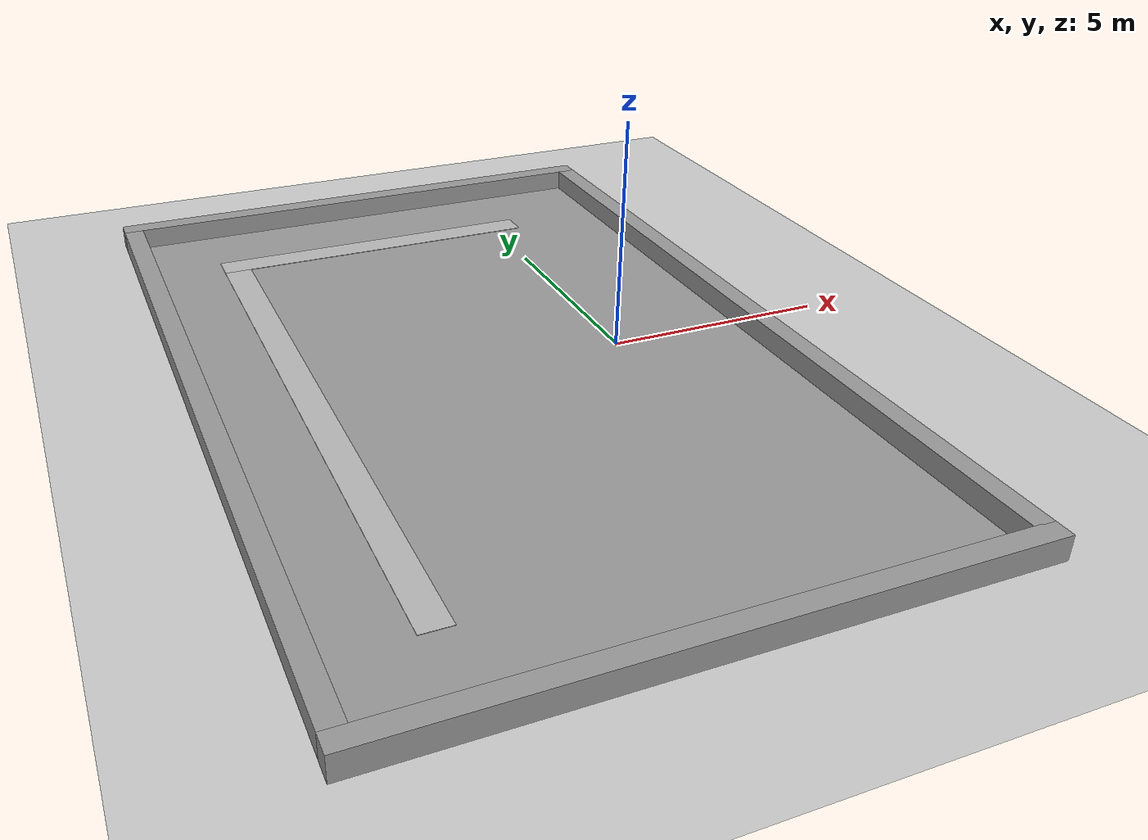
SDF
<sdf version="1.7">
 <world name="default">
  <light name="sun" type="directional">
   <pose>0 0 10 0 -0 0</pose>
   <diffuse>0.8 0.8 0.8 1</diffuse>
   <specular>0.2 0.2 0.2 1</specular>
   <attenuation>
    <range>1000</range>
    <constant>0.9</constant>
    <linear>0.01</linear>
    <quadratic>0.001</quadratic>
   </attenuation>
   <direction>-0.5 0.1 -0.9</direction>
   <spot><inner_angle>0</inner_angle><outer_angle>0</outer_angle><falloff>0</falloff></spot>
  </light>
  <model name="ground_plane">
   <static>1</static>
   <link name="link">
    <collision name="collision">
     <geometry><plane><normal>0 0 1</normal><size>100 100</size></plane></geometry>
     <surface>
      <contact><collide_bitmask>65535</collide_bitmask></contact>
      <friction><ode><mu>100</mu><mu2>50</mu2></ode></friction>
     </surface>
    </collision>
    <visual name="visual">
     <cast_shadows>0</cast_shadows>
     <geometry><plane><normal>0 0 1</normal><size>100 100</size></plane></geometry>
     <material>
      <script><uri>file://media/materials/scripts/gazebo.material</uri><name>Gazebo/Grey</name></script>
     </material>
    </visual>
   </link>
  </model>
  <gravity>0 0 -9.8</gravity>
  <magnetic_field>6e-06 2.3e-05 -4.2e-05</magnetic_field>
  <atmosphere type="adiabatic"/>
  <physics type="ode">
   <max_step_size>0.001</max_step_size>
   <real_time_factor>1</real_time_factor>
   <real_time_update_rate>1000</real_time_update_rate>
  </physics>
  <scene><ambient>0.4 0.4 0.4 1</ambient><background>0.7 0.7 0.7 1</background><shadows>1</shadows></scene>
  <spherical_coordinates>
   <surface_model>EARTH_WGS84</surface_model>
   <latitude_deg>0</latitude_deg>
   <longitude_deg>0</longitude_deg>
   <elevation>0</elevation>
   <heading_deg>0</heading_deg>
  </spherical_coordinates>
  <model name="unit_box_wall">
   <link name="unit_box::link">
    <inertial>
     <mass>1</mass>
     <inertia>
      <ixx>0.166667</ixx>
      <ixy>0</ixy>
      <ixz>0</ixz>
      <iyy>0.166667</iyy>
      <iyz>0</iyz>
      <izz>0.166667</izz>
     </inertia>
    </inertial>
    <visual name="visual">
     <geometry><box><size>0.446113 18.5982 1</size></box></geometry>
     <material>
      <script><name>Gazebo/Grey</name><uri>file://media/materials/scripts/gazebo.material</uri></script>
      <shader type="pixel"/>
     </material>
    </visual>
    <collision name="collision">
     <geometry><box><size>0.446113 18.5982 1</size></box></geometry>
     <surface>
      <friction>
       <ode><mu>1</mu><mu2>1</mu2><fdir1>0 0 0</fdir1><slip1>0</slip1><slip2>0</slip2></ode>
       <torsional>
        <coefficient>1</coefficient>
        <patch_radius>0</patch_radius>
        <surface_radius>0</surface_radius>
        <use_patch_radius>1</use_patch_radius>
        <ode><slip>0</slip></ode>
       </torsional>
      </friction>
      <bounce><restitution_coefficient>0</restitution_coefficient><threshold>1e+06</threshold></bounce>
      <contact>
       <collide_without_contact>0</collide_without_contact>
       <collide_without_contact_bitmask>1</collide_without_contact_bitmask>
       <collide_bitmask>1</collide_bitmask>
       <ode>
        <soft_cfm>0</soft_cfm>
        <soft_erp>0.2</soft_erp>
        <kp>1e+13</kp>
        <kd>1</kd>
        <max_vel>0.01</max_vel>
        <min_depth>0</min_depth>
       </ode>
       <bullet>
        <split_impulse>1</split_impulse>
        <split_impulse_penetration_threshold>-0.01</split_impulse_penetration_threshold>
        <soft_cfm>0</soft_cfm>
        <soft_erp>0.2</soft_erp>
        <kp>1e+13</kp>
        <kd>1</kd>
       </bullet>
      </contact>
     </surface>
    </collision>
   </link>
   <static>1</static>
   <allow_auto_disable>0</allow_auto_disable>
   <pose>-9.02597 0.034785 0 0 -0 0</pose>
  </model>
  <model name="unit_box_wall_clone">
   <link name="unit_box::link">
    <inertial>
     <mass>1</mass>
     <inertia>
      <ixx>0.166667</ixx>
      <ixy>0</ixy>
      <ixz>0</ixz>
      <iyy>0.166667</iyy>
      <iyz>0</iyz>
      <izz>0.166667</izz>
     </inertia>
    </inertial>
    <visual name="visual">
     <geometry><box><size>0.446113 18.5982 1</size></box></geometry>
     <material>
      <script><name>Gazebo/Grey</name><uri>file://media/materials/scripts/gazebo.material</uri></script>
      <shader type="pixel"/>
     </material>
    </visual>
    <collision name="collision">
     <geometry><box><size>0.446113 18.5982 1</size></box></geometry>
     <surface>
      <friction>
       <ode><mu>1</mu><mu2>1</mu2><fdir1>0 0 0</fdir1><slip1>0</slip1><slip2>0</slip2></ode>
       <torsional>
        <coefficient>1</coefficient>
        <patch_radius>0</patch_radius>
        <surface_radius>0</surface_radius>
        <use_patch_radius>1</use_patch_radius>
        <ode><slip>0</slip></ode>
       </torsional>
      </friction>
      <bounce><restitution_coefficient>0</restitution_coefficient><threshold>1e+06</threshold></bounce>
      <contact>
       <collide_without_contact>0</collide_without_contact>
       <collide_without_contact_bitmask>1</collide_without_contact_bitmask>
       <collide_bitmask>1</collide_bitmask>
       <ode>
        <soft_cfm>0</soft_cfm>
        <soft_erp>0.2</soft_erp>
        <kp>1e+13</kp>
        <kd>1</kd>
        <max_vel>0.01</max_vel>
        <min_depth>0</min_depth>
       </ode>
       <bullet>
        <split_impulse>1</split_impulse>
        <split_impulse_penetration_threshold>-0.01</split_impulse_penetration_threshold>
        <soft_cfm>0</soft_cfm>
        <soft_erp>0.2</soft_erp>
        <kp>1e+13</kp>
        <kd>1</kd>
       </bullet>
      </contact>
     </surface>
    </collision>
   </link>
   <static>1</static>
   <allow_auto_disable>0</allow_auto_disable>
   <pose>3.13218 0.00569 0 0 -0 0</pose>
  </model>
  <model name="unit_box_wall_clone_0">
   <link name="unit_box::link">
    <inertial>
     <mass>1</mass>
     <inertia>
      <ixx>0.166667</ixx>
      <ixy>0</ixy>
      <ixz>0</ixz>
      <iyy>0.166667</iyy>
      <iyz>0</iyz>
      <izz>0.166667</izz>
     </inertia>
    </inertial>
    <visual name="visual">
     <geometry><box><size>0.446113 12.605 1</size></box></geometry>
     <material>
      <script><name>Gazebo/Grey</name><uri>file://media/materials/scripts/gazebo.material</uri></script>
      <shader type="pixel"/>
     </material>
    </visual>
    <collision name="collision">
     <geometry><box><size>0.446113 12.605 1</size></box></geometry>
     <surface>
      <friction>
       <ode><mu>1</mu><mu2>1</mu2><fdir1>0 0 0</fdir1><slip1>0</slip1><slip2>0</slip2></ode>
       <torsional>
        <coefficient>1</coefficient>
        <patch_radius>0</patch_radius>
        <surface_radius>0</surface_radius>
        <use_patch_radius>1</use_patch_radius>
        <ode><slip>0</slip></ode>
       </torsional>
      </friction>
      <bounce><restitution_coefficient>0</restitution_coefficient><threshold>1e+06</threshold></bounce>
      <contact>
       <collide_without_contact>0</collide_without_contact>
       <collide_without_contact_bitmask>1</collide_without_contact_bitmask>
       <collide_bitmask>1</collide_bitmask>
       <ode>
        <soft_cfm>0</soft_cfm>
        <soft_erp>0.2</soft_erp>
        <kp>1e+13</kp>
        <kd>1</kd>
        <max_vel>0.01</max_vel>
        <min_depth>0</min_depth>
       </ode>
       <bullet>
        <split_impulse>1</split_impulse>
        <split_impulse_penetration_threshold>-0.01</split_impulse_penetration_threshold>
        <soft_cfm>0</soft_cfm>
        <soft_erp>0.2</soft_erp>
        <kp>1e+13</kp>
        <kd>1</kd>
       </bullet>
      </contact>
     </surface>
    </collision>
   </link>
   <static>1</static>
   <allow_auto_disable>0</allow_auto_disable>
   <pose>-2.94746 -9.48662 0 0 0 -1.57124</pose>
  </model>
  <model name="unit_box_wall_clone_0_clone">
   <link name="unit_box::link">
    <inertial>
     <mass>1</mass>
     <inertia>
      <ixx>0.166667</ixx>
      <ixy>0</ixy>
      <ixz>0</ixz>
      <iyy>0.166667</iyy>
      <iyz>0</iyz>
      <izz>0.166667</izz>
     </inertia>
    </inertial>
    <visual name="visual">
     <geometry><box><size>0.446113 12.605 1</size></box></geometry>
     <material>
      <script><name>Gazebo/Grey</name><uri>file://media/materials/scripts/gazebo.material</uri></script>
      <shader type="pixel"/>
     </material>
    </visual>
    <collision name="collision">
     <geometry><box><size>0.446113 12.605 1</size></box></geometry>
     <surface>
      <friction>
       <ode><mu>1</mu><mu2>1</mu2><fdir1>0 0 0</fdir1><slip1>0</slip1><slip2>0</slip2></ode>
       <torsional>
        <coefficient>1</coefficient>
        <patch_radius>0</patch_radius>
        <surface_radius>0</surface_radius>
        <use_patch_radius>1</use_patch_radius>
        <ode><slip>0</slip></ode>
       </torsional>
      </friction>
      <bounce><restitution_coefficient>0</restitution_coefficient><threshold>1e+06</threshold></bounce>
      <contact>
       <collide_without_contact>0</collide_without_contact>
       <collide_without_contact_bitmask>1</collide_without_contact_bitmask>
       <collide_bitmask>1</collide_bitmask>
       <ode>
        <soft_cfm>0</soft_cfm>
        <soft_erp>0.2</soft_erp>
        <kp>1e+13</kp>
        <kd>1</kd>
        <max_vel>0.01</max_vel>
        <min_depth>0</min_depth>
       </ode>
       <bullet>
        <split_impulse>1</split_impulse>
        <split_impulse_penetration_threshold>-0.01</split_impulse_penetration_threshold>
        <soft_cfm>0</soft_cfm>
        <soft_erp>0.2</soft_erp>
        <kp>1e+13</kp>
        <kd>1</kd>
       </bullet>
      </contact>
     </surface>
    </collision>
   </link>
   <static>1</static>
   <allow_auto_disable>0</allow_auto_disable>
   <pose>-2.94746 9.5173 0 0 0 -1.57124</pose>
  </model>
  <model name="unit_box_wall_0">
   <link name="unit_box::link">
    <inertial>
     <mass>1</mass>
     <inertia>
      <ixx>0.166667</ixx>
      <ixy>0</ixy>
      <ixz>0</ixz>
      <iyy>0.166667</iyy>
      <iyz>0</iyz>
      <izz>0.166667</izz>
     </inertia>
    </inertial>
    <visual name="visual">
     <geometry><box><size>11.9617 18.9194 0.225866</size></box></geometry>
     <material>
      <script><name>Gazebo/Grey</name><uri>file://media/materials/scripts/gazebo.material</uri></script>
      <shader type="pixel"/>
     </material>
    </visual>
    <collision name="collision">
     <geometry><box><size>11.9617 18.9194 0.225866</size></box></geometry>
     <surface>
      <friction>
       <ode><mu>1</mu><mu2>1</mu2><fdir1>0 0 0</fdir1><slip1>0</slip1><slip2>0</slip2></ode>
       <torsional>
        <coefficient>1</coefficient>
        <patch_radius>0</patch_radius>
        <surface_radius>0</surface_radius>
        <use_patch_radius>1</use_patch_radius>
        <ode><slip>0</slip></ode>
       </torsional>
      </friction>
      <bounce><restitution_coefficient>0</restitution_coefficient><threshold>1e+06</threshold></bounce>
      <contact>
       <collide_without_contact>0</collide_without_contact>
       <collide_without_contact_bitmask>1</collide_without_contact_bitmask>
       <collide_bitmask>1</collide_bitmask>
       <ode>
        <soft_cfm>0</soft_cfm>
        <soft_erp>0.2</soft_erp>
        <kp>1e+13</kp>
        <kd>1</kd>
        <max_vel>0.01</max_vel>
        <min_depth>0</min_depth>
       </ode>
       <bullet>
        <split_impulse>1</split_impulse>
        <split_impulse_penetration_threshold>-0.01</split_impulse_penetration_threshold>
        <soft_cfm>0</soft_cfm>
        <soft_erp>0.2</soft_erp>
        <kp>1e+13</kp>
        <kd>1</kd>
       </bullet>
      </contact>
     </surface>
    </collision>
   </link>
   <static>1</static>
   <allow_auto_disable>0</allow_auto_disable>
   <pose>-2.99807 0.153787 -0.095815 0 -0 0</pose>
  </model>
  <model name="wallx">
   <link name="unit_box::link">
    <inertial>
     <mass>0.360824</mass>
     <inertia>
      <ixx>1.11244</ixx>
      <ixy>0</ixy>
      <ixz>0</ixz>
      <iyy>0.0643516</iyy>
      <iyz>0</iyz>
      <izz>1.11666</izz>
     </inertia>
    </inertial>
    <visual name="visual">
     <geometry><box><size>0.63604 14.9462 1</size></box></geometry>
     <material>
      <script>
       <uri>model://wallx/materials/scripts</uri>
       <uri>model://wallx/materials/textures/</uri>
       <name>sofaMat/Diffuse</name>
      </script>
      <shader type="pixel"/>
     </material>
    </visual>
    <collision name="collision">
     <geometry><box><size>0.63604 14.9462 1</size></box></geometry>
     <surface>
      <friction>
       <ode><mu>1</mu><mu2>1</mu2><fdir1>0 0 0</fdir1><slip1>0</slip1><slip2>0</slip2></ode>
       <torsional>
        <coefficient>1</coefficient>
        <patch_radius>0</patch_radius>
        <surface_radius>0</surface_radius>
        <use_patch_radius>1</use_patch_radius>
        <ode><slip>0</slip></ode>
       </torsional>
      </friction>
      <bounce><restitution_coefficient>0</restitution_coefficient><threshold>1e+06</threshold></bounce>
      <contact>
       <collide_without_contact>0</collide_without_contact>
       <collide_without_contact_bitmask>1</collide_without_contact_bitmask>
       <collide_bitmask>1</collide_bitmask>
       <ode>
        <soft_cfm>0</soft_cfm>
        <soft_erp>0.2</soft_erp>
        <kp>1e+13</kp>
        <kd>1</kd>
        <max_vel>0.01</max_vel>
        <min_depth>0</min_depth>
       </ode>
       <bullet>
        <split_impulse>1</split_impulse>
        <split_impulse_penetration_threshold>-0.01</split_impulse_penetration_threshold>
        <soft_cfm>0</soft_cfm>
        <soft_erp>0.2</soft_erp>
        <kp>1e+13</kp>
        <kd>1</kd>
       </bullet>
      </contact>
     </surface>
    </collision>
   </link>
   <static>1</static>
   <allow_auto_disable>0</allow_auto_disable>
   <pose>-6.89945 0.027812 -0.470978 0 -0 0</pose>
  </model>
  <model name="wallx_clone">
   <link name="unit_box::link">
    <inertial>
     <mass>0.360824</mass>
     <inertia>
      <ixx>1.11244</ixx>
      <ixy>0</ixy>
      <ixz>0</ixz>
      <iyy>0.0643516</iyy>
      <iyz>0</iyz>
      <izz>1.11666</izz>
     </inertia>
    </inertial>
    <visual name="visual">
     <geometry><box><size>0.636041 7.85363 1</size></box></geometry>
     <material>
      <script>
       <uri>model://wallx/materials/scripts</uri>
       <uri>model://wallx/materials/textures/</uri>
       <name>sofaMat/Diffuse</name>
      </script>
      <shader type="pixel"/>
     </material>
    </visual>
    <collision name="collision">
     <geometry><box><size>0.636041 7.85363 1</size></box></geometry>
     <surface>
      <friction>
       <ode><mu>1</mu><mu2>1</mu2><fdir1>0 0 0</fdir1><slip1>0</slip1><slip2>0</slip2></ode>
       <torsional>
        <coefficient>1</coefficient>
        <patch_radius>0</patch_radius>
        <surface_radius>0</surface_radius>
        <use_patch_radius>1</use_patch_radius>
        <ode><slip>0</slip></ode>
       </torsional>
      </friction>
      <bounce><restitution_coefficient>0</restitution_coefficient><threshold>1e+06</threshold></bounce>
      <contact>
       <collide_without_contact>0</collide_without_contact>
       <collide_without_contact_bitmask>1</collide_without_contact_bitmask>
       <collide_bitmask>1</collide_bitmask>
       <ode>
        <soft_cfm>0</soft_cfm>
        <soft_erp>0.2</soft_erp>
        <kp>1e+13</kp>
        <kd>1</kd>
        <max_vel>0.01</max_vel>
        <min_depth>0</min_depth>
       </ode>
       <bullet>
        <split_impulse>1</split_impulse>
        <split_impulse_penetration_threshold>-0.01</split_impulse_penetration_threshold>
        <soft_cfm>0</soft_cfm>
        <soft_erp>0.2</soft_erp>
        <kp>1e+13</kp>
        <kd>1</kd>
       </bullet>
      </contact>
     </surface>
    </collision>
   </link>
   <static>1</static>
   <allow_auto_disable>0</allow_auto_disable>
   <pose>-3.28734 7.23337 -0.470978 0 0 -1.57156</pose>
  </model>
 </world>
</sdf>
